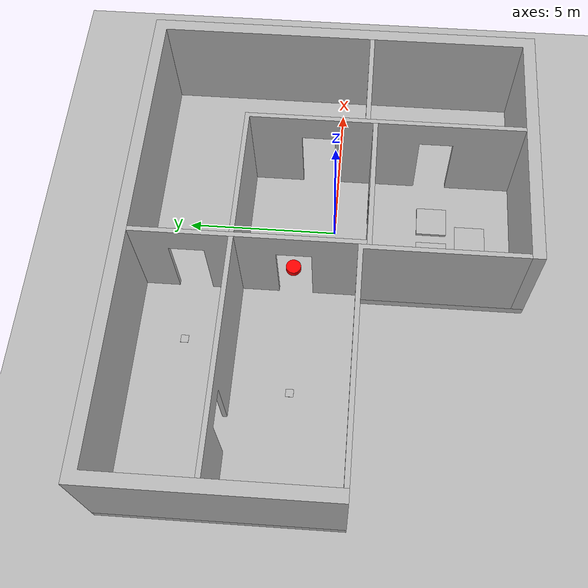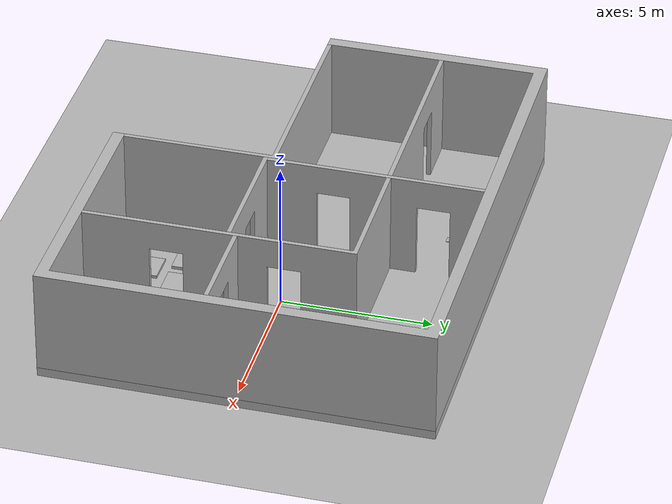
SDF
<sdf version="1.5">
 <world name="default">
  <physics type="ode">
   <max_step_size>0.004</max_step_size>
   <real_time_factor>1.0</real_time_factor>
   <real_time_update_rate>250</real_time_update_rate>
  </physics>
  <plugin name="gz::sim::systems::Physics" filename="gz-sim-physics-system"/>
  <plugin name="gz::sim::systems::UserCommands" filename="gz-sim-user-commands-system"/>
  <plugin name="gz::sim::systems::SceneBroadcaster" filename="gz-sim-scene-broadcaster-system"/>
  <plugin name="gz::sim::systems::Contact" filename="gz-sim-contact-system"/>
  <plugin name="gz::sim::systems::Imu" filename="gz-sim-imu-system"/>
  <plugin name="gz::sim::systems::AirPressure" filename="gz-sim-air-pressure-system"/>
  <plugin name="gz::sim::systems::ApplyLinkWrench" filename="gz-sim-apply-link-wrench-system"/>
  <plugin name="gz::sim::systems::NavSat" filename="gz-sim-navsat-system"/>
  <plugin name="gz::sim::systems::Sensors" filename="gz-sim-sensors-system">
   <render_engine>ogre2</render_engine>
  </plugin>
  <gravity>0 0 -9.8</gravity>
  <magnetic_field>6e-06 2.3e-05 -4.2e-05</magnetic_field>
  <atmosphere type="adiabatic"/>
  <scene>
   <grid>false</grid>
   <ambient>0.4 0.4 0.4 1</ambient>
   <background>0.7 0.7 0.7 1</background>
   <shadows>true</shadows>
  </scene>
  <spherical_coordinates>
   <surface_model>EARTH_WGS84</surface_model>
   <world_frame_orientation>ENU</world_frame_orientation>
   <latitude_deg>47.397971057728974</latitude_deg>
   <longitude_deg>8.546163739800146</longitude_deg>
   <elevation>0</elevation>
  </spherical_coordinates>
  <light type="directional" name="sun">
   <pose>0 0 10 0 0 0</pose>
   <diffuse>0.8 0.8 0.8 1</diffuse>
   <specular>0.8 0.8 0.8 1</specular>
   <attenuation>
    <range>1000</range>
    <constant>0.9</constant>
    <linear>0.01</linear>
    <quadratic>0.001</quadratic>
   </attenuation>
   <direction>-0.5 0.1 -0.9</direction>
  </light>
  <include>
   <name>ground_my</name>
   <uri>model://ground_my</uri>
   <pose relative_to="world">0 0 0 0 0 0</pose>
  </include>
  <include>
   <name>0_floor</name>
   <uri>model://0_floor</uri>
   <static>true</static>
   <pose relative_to="world">0 0 0.3 0 0 0</pose>
  </include>
  <include>
   <name>0_wall_1</name>
   <uri>model://0_wall_1_no_porog</uri>
   <static>true</static>
   <pose relative_to="world">0 0 0.3 0 0 0</pose>
  </include>
  <include>
   <name>0_wall_2</name>
   <uri>model://0_wall_2_no_porog</uri>
   <static>true</static>
   <pose relative_to="world">0 0 0.3 0 0 0</pose>
  </include>
  <include>
   <name>0_wall_3</name>
   <uri>model://0_wall_3_no_porog</uri>
   <static>true</static>
   <pose relative_to="world">0 0 0.3 0 0 0</pose>
  </include>
  <include>
   <name>0_wall_4</name>
   <uri>model://0_wall_4_no_porog</uri>
   <static>true</static>
   <pose relative_to="world">0 0 0.3 0 0 0</pose>
  </include>
  <include>
   <name>0_wall_5</name>
   <uri>model://0_wall_5_no_porog</uri>
   <static>true</static>
   <pose relative_to="world">0 0 0.3 0 0 0</pose>
  </include>
  <include>
   <name>0_wall_6</name>
   <uri>model://0_wall_6</uri>
   <static>true</static>
   <pose relative_to="world">0 0 0.3 0 0 0</pose>
  </include>
  <include>
   <name>0_wall_7</name>
   <uri>model://0_wall_7</uri>
   <static>true</static>
   <pose relative_to="world">0 0 0.3 0 0 0</pose>
  </include>
  <include>
   <name>qr4</name>
   <uri>model://4qr_without_car</uri>
   <static>false</static>
   <pose>-4.3503051632143475 4.556837327545475 0.20000000298023224 0 0 0</pose>
  </include>
  <include>
   <name>qr5</name>
   <uri>model://5qr_without_car</uri>
   <static>false</static>
   <pose>-5.9504872610343309 1.0389659662918644 0.20000000298023224 0 0 0</pose>
  </include>
  <include>
   <name>qr6</name>
   <uri>model://6qr_without_car</uri>
   <static>false</static>
   <pose>-0.48709321726665289 0.89845085647787637 0.20000000298023224 0 0 0</pose>
  </include>
  <include>
   <uri>model://platform</uri>
   <static>false</static>
   <pose>3.7856374470307368 -4.3004851712486714 0.30000000298023224 0 0 0</pose>
  </include>
  <include><name>red_dot_1</name><uri>model://cylinder_0.5</uri><pose>-1.61 1.28 0.25 0 0 0</pose></include>
  <include><name>red_dot_2</name><uri>model://cylinder_0.75</uri><pose>3.89 -2.43 0.25 0 0 0</pose></include>
  <include>
   <uri>model://0_land_platform_test</uri>
   <static>false</static>
   <pose>-0.21630634251636804 -4.5646165661315199 0.40000000596046448 0 0 0</pose>
  </include>
 </world>
</sdf>

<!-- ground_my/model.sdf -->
<sdf version="1.5">
    <model name="ground">
        <static>true</static>
        <link name="link">
            <collision name="collision">
                <geometry>
                    <mesh>
                        <scale>1 1 1</scale>
                        <uri>model://ground_my/meshes/ground.dae</uri>
                    </mesh>
                    <surface>
                    <friction>
                        <ode>
                            <mu>1.2</mu>
                            <mu2>1.2</mu2>
                        </ode>
                    </friction>
                    </surface>
                </geometry>
            </collision>
            <visual name="visual">
              <geometry>
                <mesh>
                    <scale>1 1 1</scale>
                    <uri>model://ground_my/meshes/ground.dae</uri>
                </mesh>
              </geometry>
             </visual>
        </link>
    </model>
</sdf>

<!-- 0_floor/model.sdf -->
<sdf version="1.5">
    <model name="floor">
        <static>true</static>
        <link name="link">
            <collision name="collision1">
                <pose>0 0 0 0 0 0</pose>
                <geometry>
                    <mesh>
                        <uri>meshes/floor.dae</uri>
                    </mesh>
                </geometry>
            </collision>
            <visual name="visual1">
              <pose>0 0 0 0 0 0</pose>
              <geometry>
              <mesh>
                 <uri>meshes/floor.dae</uri>
              </mesh>
              </geometry>
             </visual>
        </link>
    </model>
</sdf>

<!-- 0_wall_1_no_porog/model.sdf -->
<sdf version="1.5">
    <model name="0_wall_1_no_porog">
        <static>true</static>
        <link name="link">
            <collision name="collision1">
                <pose>0 0 0 0 0 0</pose>
                <geometry>
                    <mesh>
                        <uri>meshes/0_wall_1_no_porog.dae</uri>
                    </mesh>
                </geometry>
            </collision>
            <visual name="visual1">
              <pose>0 0 0 0 0 0</pose>
              <geometry>
              <mesh>
                 <uri>meshes/0_wall_1_no_porog.dae</uri>
              </mesh>
              </geometry>
             </visual>
        </link>
    </model>
</sdf>

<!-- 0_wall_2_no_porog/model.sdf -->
<sdf version="1.5">
    <model name="0_wall_2_no_porog">
        <static>true</static>
        <link name="link">
            <collision name="collision1">
                <pose>0 0 0 0 0 0</pose>
                <geometry>
                    <mesh>
                        <uri>meshes/0_wall_2_no_porog.dae</uri>
                    </mesh>
                </geometry>
            </collision>
            <visual name="visual1">
              <pose>0 0 0 0 0 0</pose>
              <geometry>
              <mesh>
                 <uri>meshes/0_wall_2_no_porog.dae</uri>
              </mesh>
              </geometry>
             </visual>
        </link>
    </model>
</sdf>

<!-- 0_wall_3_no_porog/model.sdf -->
<sdf version="1.5">
    <model name="0_wall_3_no_porog">
        <static>true</static>
        <link name="link">
            <collision name="collision1">
                <pose>0 0 0 0 0 0</pose>
                <geometry>
                    <mesh>
                        <uri>meshes/0_wall_3_no_porog.dae</uri>
                    </mesh>
                </geometry>
            </collision>
            <visual name="visual1">
              <pose>0 0 0 0 0 0</pose>
              <geometry>
              <mesh>
                 <uri>meshes/0_wall_3_no_porog.dae</uri>
              </mesh>
              </geometry>
             </visual>
        </link>
    </model>
</sdf>

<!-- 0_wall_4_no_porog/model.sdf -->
<sdf version="1.5">
    <model name="0_wall_4_no_porog">
        <static>true</static>
        <link name="link">
            <collision name="collision1">
                <pose>0 0 0 0 0 0</pose>
                <geometry>
                    <mesh>
                        <uri>meshes/0_wall_4_no_porog.dae</uri>
                    </mesh>
                </geometry>
            </collision>
            <visual name="visual1">
              <pose>0 0 0 0 0 0</pose>
              <geometry>
              <mesh>
                 <uri>meshes/0_wall_4_no_porog.dae</uri>
              </mesh>
              </geometry>
             </visual>
        </link>
    </model>
</sdf>

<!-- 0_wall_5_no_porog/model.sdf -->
<sdf version="1.5">
    <model name="0_wall_5_no_porog">
        <static>true</static>
        <link name="link">
            <collision name="collision1">
                <pose>0 0 0 0 0 0</pose>
                <geometry>
                    <mesh>
                        <uri>meshes/0_wall_5_no_porog.dae</uri>
                    </mesh>
                </geometry>
            </collision>
            <visual name="visual1">
              <pose>0 0 0 0 0 0</pose>
              <geometry>
              <mesh>
                 <uri>meshes/0_wall_5_no_porog.dae</uri>
              </mesh>
              </geometry>
             </visual>
        </link>
    </model>
</sdf>

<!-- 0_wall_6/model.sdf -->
<sdf version="1.5">
    <model name="0_wall_6">
        <static>true</static>
        <link name="link">
            <collision name="collision1">
                <pose>0 0 0 0 0 0</pose>
                <geometry>
                    <mesh>
                        <uri>meshes/0_wall_6.dae</uri>
                    </mesh>
                </geometry>
            </collision>
            <visual name="visual1">
              <pose>0 0 0 0 0 0</pose>
              <geometry>
              <mesh>
                 <uri>meshes/0_wall_6.dae</uri>
              </mesh>
              </geometry>
             </visual>
        </link>
    </model>
</sdf>

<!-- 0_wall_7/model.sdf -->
<sdf version="1.5">
    <model name="0_wall_7">
        <static>true</static>
        <link name="link">
            <collision name="collision1">
                <pose>0 0 0 0 0 0</pose>
                <geometry>
                    <mesh>
                        <uri>meshes/0_wall_7.dae</uri>
                    </mesh>
                </geometry>
            </collision>
            <visual name="visual1">
              <pose>0 0 0 0 0 0</pose>
              <geometry>
              <mesh>
                 <uri>meshes/0_wall_7.dae</uri>
              </mesh>
              </geometry>
             </visual>
        </link>
    </model>
</sdf>

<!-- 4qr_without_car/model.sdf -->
<sdf version="1.5">
    <model name='qr4'>
      <static>true</static>
        <link name="qr4">
             <collision name="collision">
                <pose>0 0 0.1 0 0 0</pose>
                <geometry>
                    <mesh>
                        <uri>model://4qr_without_car/meshes/qr.stl</uri>
                    </mesh>
                </geometry>
            </collision>
            <visual name="visual">
              <pose>0 0 0.1 0 0 0</pose>
              <geometry>
              <mesh>
                 <uri>model://4qr_without_car/meshes/qr4.dae</uri>
              </mesh>
              </geometry>
             </visual>
        </link>

    </model>
</sdf>

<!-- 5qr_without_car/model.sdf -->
<sdf version="1.5">
    <model name='qr5'>
      <static>true</static>
        <link name="qr5">
             <collision name="collision">
                <pose>0 0 0.1 0 0 0</pose>
                <geometry>
                    <mesh>
                        <uri>model://5qr_without_car/meshes/qr.stl</uri>
                    </mesh>
                </geometry>
            </collision>
            <visual name="visual">
              <pose>0 0 0.1 0 0 0</pose>
              <geometry>
              <mesh>
                 <uri>model://5qr_without_car/meshes/qr5.dae</uri>
              </mesh>
              </geometry>
             </visual>
        </link>

    </model>
</sdf>

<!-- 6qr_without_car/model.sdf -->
<sdf version="1.5">
    <model name='qr6'>
      <static>true</static>
        <link name="qr6">
             <collision name="collision">
                <pose>0 0 0.1 0 0 0</pose>
                <geometry>
                    <mesh>
                        <uri>model://6qr_without_car/meshes/qr.stl</uri>
                    </mesh>
                </geometry>
            </collision>
            <visual name="visual">
              <pose>0 0 0.1 0 0 0</pose>
              <geometry>
              <mesh>
                 <uri>model://6qr_without_car/meshes/qr6.dae</uri>
              </mesh>
              </geometry>
             </visual>
        </link>

    </model>
</sdf>

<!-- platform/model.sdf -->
<sdf version="1.6">
  <model name="platform">
    <static>false</static>
    <link name="dummy_upper"/>

    <joint name="world_joint" type="fixed">
      <parent>world</parent>
      <child>dummy_upper</child>
    </joint>
  </model>
</sdf>

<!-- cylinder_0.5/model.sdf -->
<sdf version="1.5">
    <model name="cylinder_05">
        <static>true</static>
        <link name="link">
            <collision name="collision1">
                <pose>0 0 0 0 0 0</pose>
                <geometry>
                    <mesh>
                        <uri>model://cylinder_0.5/meshes/cylinder_0_5.stl</uri>
                    </mesh>
                </geometry>
            </collision>
            <visual name="visual1">
  		<pose>0 0 0 0 0 0</pose>
  		<geometry>
    			<cylinder>
      				<radius>0.25</radius>
      				<length>0.5</length>
    			</cylinder>
  		</geometry>
  		<material>
    <ambient>1 0 0 1</ambient>
    <diffuse>1 0 0 1</diffuse>
    <specular>0.2 0 0 1</specular>
    <emissive>0.5 0 0 1</emissive>
  </material>
</visual>
        </link>
    </model>
</sdf>

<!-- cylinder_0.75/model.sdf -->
<sdf version="1.5">
    <model name="cylinder_075">
        <static>true</static>
        <link name="link">
            <collision name="collision1">
                <pose>0 0 0 0 0 0</pose>
                <geometry>
                    <mesh>
                        <uri>model://cylinder_0.75/meshes/cylinder_0_75.stl</uri>
                    </mesh>
                </geometry>
            </collision>
            <visual name="visual1">
  		<pose>0 0 0 0 0 0</pose>
  		<geometry>
    			<cylinder>
      				<radius>0.375</radius>
     			        <length>0.5</length>
    			</cylinder>
  		</geometry>
  		<material>
    			<ambient>1 0 0 1</ambient>
    			<diffuse>1 0 0 1</diffuse>
    			<specular>0.2 0 0 1</specular>
    			<emissive>0.5 0 0 1</emissive>
  		</material>
	</visual>

        </link>
    </model>
</sdf>

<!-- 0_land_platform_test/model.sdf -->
<sdf version="1.5">
    <model name="land_platform">
        <static>true</static>
        <link name="link">
            <collision name="collision">
                <pose>0 0 0 0 0 0</pose>
                <geometry>
                    <mesh>
                        <uri>model://0_land_platform_test/meshes/metki.dae</uri>
                    </mesh>
                </geometry>
            </collision>
            <visual name="visual">
              <pose>0 0 0 0 0 0</pose>
              <geometry>
              <mesh>
                 <uri>model://0_land_platform_test/meshes/metki.dae</uri>
              </mesh>
              </geometry>
             </visual>
        </link>
    </model>
</sdf>
